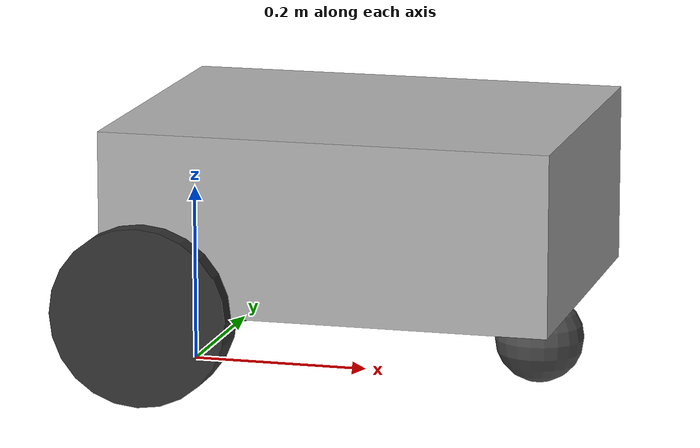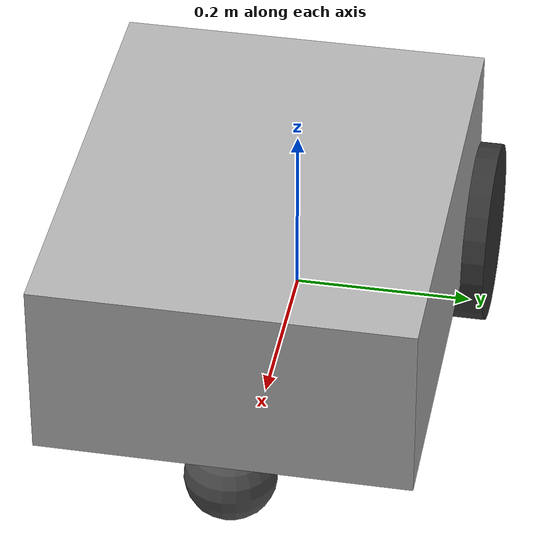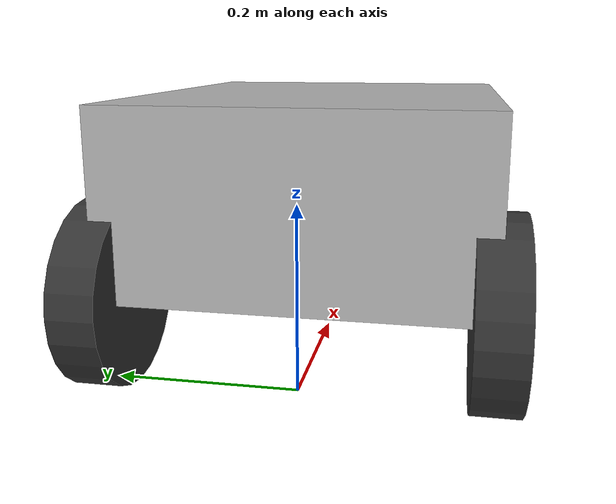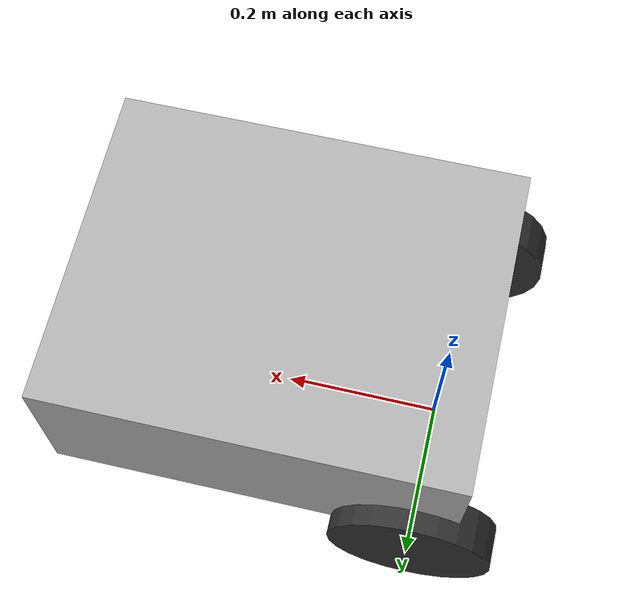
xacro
<?xml version="1.0"?>
<robot name="microbot" xmlns:xacro="http://www.ros.org/wiki/xacro">
    <xacro:property name="M_PI" value="3.1415926"/>
    <xacro:property name="BASE_LINK_MASS"   value="10" />
    <xacro:property name="BASE_LINK_LENGTH" value="0.50"/>
    <xacro:property name="BASE_LINK_WIDTH" value="0.40"/>
    <xacro:property name="BASE_LINK_HEIGHT" value="0.20"/>

    <xacro:property name="WHEEL_MASS"   value="1" />
    <xacro:property name="WHEEL_RADIUS" value="0.1"/>
    <xacro:property name="WHEEL_WIDTH" value="0.05"/>
    <xacro:property name="WHEEL_POS_X" value="0.2"/>
    <xacro:property name="WHEEL_POS_Y" value="0.2"/>

    <xacro:property name="CASTER_MASS" value="0.2"/>
    <xacro:property name="CASTER_RADIUS" value="0.05"/>

    <material name="Black">
        <color rgba="0.2 0.2 0.2 1"/>
    </material>

    <material name="Grey">
        <color rgba="0.7 0.7 0.7 1"/>
    </material>

    <material name="DarkGrey">
        <color rgba="0.3 0.3 0.3 1"/>
    </material>
    <material name="Blue">
        <color rgba="0.0 0.2 1 1"/>
    </material>
    <material name="Red">
        <color rgba="1 0.2 0.2 1"/>
    </material>
    <material name="Green">
        <color rgba="0 1 0 1"/>
    </material>

    <xacro:macro name="sphere_inertial_matrix" params="m r">
        <inertial>
            <mass value="${m}" />
            <inertia ixx="${2*m*r*r/5}" ixy="0" ixz="0"
                iyy="${2*m*r*r/5}" iyz="0"
                izz="${2*m*r*r/5}" />
        </inertial>
    </xacro:macro>

    <xacro:macro name="cylinder_inertial_matrix" params="m r h">
        <inertial>
            <mass value="${m}" />
            <inertia ixx="${m*(3*r*r+h*h)/12}" ixy = "0" ixz = "0"
                iyy="${m*(3*r*r+h*h)/12}" iyz = "0"
                izz="${m*r*r/2}" />
        </inertial>
    </xacro:macro>

    <xacro:macro name="box_inertial_matrix" params="m a b c">
       <inertial>
          <mass value="${m}" />
           <inertia ixx="${m*(b*b+c*c)/12}" ixy = "0" ixz = "0"
              iyy="${m*(c*c+a*a)/12}" iyz = "0"
              izz="${m*(a*a+b*b)/12}" />
       </inertial>
    </xacro:macro>

    <link name="base_footprint">
        <visual>
            <origin xyz="0 0 0" rpy="0 0 0" />
            <geometry>
                <box size="0.001 0.001 0.001" />
            </geometry>
        </visual>
    </link>

    <gazebo reference="base_footprint">
        <turnGravityOff>false</turnGravityOff>
    </gazebo>

    <joint name="base_footprint_joint" type="fixed">
        <origin xyz="${WHEEL_POS_X} 0 ${BASE_LINK_HEIGHT/2 + CASTER_RADIUS*2}" rpy="0 0 0" />
        <parent link="base_footprint"/>
        <child link="base_link"/>
    </joint>

    <link name="base_link">
        <visual>
            <origin xyz="0 0 0" rpy="0 0 0"/>
            <geometry>
                <box size="${BASE_LINK_LENGTH} ${BASE_LINK_WIDTH} ${BASE_LINK_HEIGHT}" />
            </geometry>
            <material name="Grey"/>
        </visual>
        <collision>
            <origin xyz=" 0 0 0" rpy="0 0 0" />
            <geometry>
                <box size="${BASE_LINK_LENGTH} ${BASE_LINK_WIDTH} ${BASE_LINK_HEIGHT}"/>
            </geometry>
        </collision>
        <box_inertial_matrix  m="${BASE_LINK_MASS}" a="${BASE_LINK_LENGTH}" b="${BASE_LINK_WIDTH}"  c="${BASE_LINK_HEIGHT}" />
    </link>
    <gazebo reference="base_link">
        <material>Gazebo/Yellow</material>
    </gazebo>

    <joint name="front_caster_joint" type="continuous">
        <origin xyz="${WHEEL_POS_X} 0 ${-1*BASE_LINK_HEIGHT/2 - CASTER_RADIUS}" rpy="0 0 0"/>
        <parent link="base_link"/>
        <child link="front_caster_link"/>
        <axis xyz="1 1 0"/>
    </joint>/

    <link name="front_caster_link">
        <visual>
            <origin xyz="0 0 0" rpy="0 0 0"/>
            <geometry>
                <sphere radius="${CASTER_RADIUS}"/>
            </geometry>
            <material name="DarkGrey"/>
        </visual>
        <collision>
            <origin xyz="0 0 0" rpy="0 0 0"/>
            <geometry>
                <sphere radius="${CASTER_RADIUS}" />
            </geometry>
        </collision>
        <sphere_inertial_matrix  m="${CASTER_MASS}" r="${CASTER_RADIUS}" />
    </link>
    <gazebo reference="front_caster_link">
        <material>Gazebo/DarkGrey</material>
        <mu1>0</mu1>
        <mu2>0</mu2>
        <kp>10000000</kp>
        <kd>1</kd>
    </gazebo>

    <xacro:macro name="wheel" params="prefix reflect">
        <joint name="${prefix}_wheel_joint" type="continuous">
            <origin xyz="${-WHEEL_POS_X} ${reflect * WHEEL_POS_Y} ${-1*BASE_LINK_HEIGHT/2}" rpy="0 0 0"/>
            <parent link="base_link"/>
            <child link="${prefix}_wheel_link"/>
            <axis xyz="0 1 0"/>

        </joint>

        <link name="${prefix}_wheel_link">
            <visual>
                <origin xyz="0 0 0"  rpy="${M_PI/2} 0 0"/>
                <geometry>
                    <cylinder radius="${WHEEL_RADIUS}" length="${WHEEL_WIDTH}"/>
                </geometry>
                <material name="Black"/>
            </visual>
            <collision>
                <origin xyz="0 0 0" rpy="${M_PI/2} 0 0" />
                <geometry>
                    <cylinder radius="${WHEEL_RADIUS}" length = "${WHEEL_WIDTH}"/>
                </geometry>
            </collision>
            <cylinder_inertial_matrix  m="${WHEEL_MASS}" r="${WHEEL_RADIUS}" h="${WHEEL_WIDTH}" />
        </link>
        <gazebo reference="${prefix}_wheel_link">
            <material>Gazebo/Black</material>
	        <mu1>10000000</mu1>
		    <mu2>10000000</mu2>
		    <kp>10000000</kp>
		    <kd>1</kd>
        </gazebo>

        <transmission name="${prefix}_wheel_joint_trans">
            <type>transmission_interface/SimpleTransmission</type>
            <joint name="${prefix}_wheel_joint" >
                <hardwareInterface>hardware_interface/VelocityJointInterface</hardwareInterface>
            </joint>
            <actuator name="${prefix}_wheel_joint_motor">
                <hardwareInterface>hardware_interface/VelocityJointInterface</hardwareInterface>
                <mechanicalReduction>1</mechanicalReduction>
            </actuator>
        </transmission>

    </xacro:macro>

    <wheel prefix="left" reflect="1"/>
    <wheel prefix="right" reflect="-1"/>

    <gazebo>
        <plugin name="differential_drive_controller"
                filename="libgazebo_ros_diff_drive.so">
            <rosDebugLevel>Debug</rosDebugLevel>
            <publishWheelTF>false</publishWheelTF>
            <robotNamespace>/</robotNamespace>
            <odometrySource>world</odometrySource>

            <publishOdomTF>false</publishOdomTF>
            <broadcastTF>0</broadcastTF>
            <publishTf>0</publishTf>
            <publishWheelJointState>false</publishWheelJointState>

            <alwaysOn>true</alwaysOn>
            <updateRate>100.0</updateRate>
            <legacyMode>true</legacyMode>
            <leftJoint>left_wheel_joint</leftJoint>
            <rightJoint>right_wheel_joint</rightJoint>
            <wheelSeparation>${WHEEL_POS_Y*2}</wheelSeparation>
            <wheelDiameter>${2*WHEEL_RADIUS}</wheelDiameter>

            <wheelTorque>30</wheelTorque>
            <wheelAcceleration>2</wheelAcceleration>
            <commandTopic>cmd_vel</commandTopic>
            <odometryFrame>odom</odometryFrame>
            <odometryTopic></odometryTopic>
            <robotBaseFrame>base_footprint</robotBaseFrame>
        </plugin>

        <plugin name="joint_state_publisher_left" filename="libgazebo_ros_joint_state_publisher.so">
            <ros>
                <namespace>microbot</namespace>
            </ros>
            <jointName>left_wheel_joint</jointName>
            <updateRate>100</updateRate>
        </plugin>

        <plugin name="joint_state_publisher_right" filename="libgazebo_ros_joint_state_publisher.so">
            <ros>
                <namespace>microbot</namespace>
            </ros>
            <jointName>right_wheel_joint</jointName>
            <updateRate>100</updateRate>
        </plugin>

    </gazebo>

</robot>
